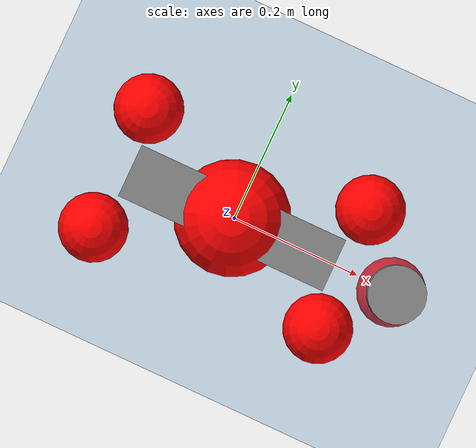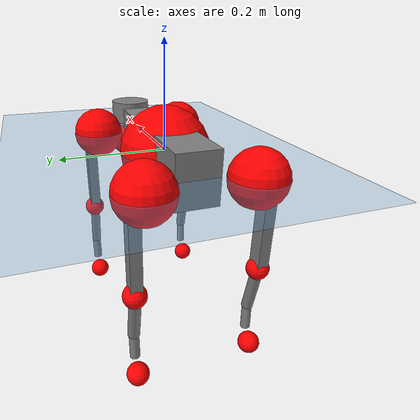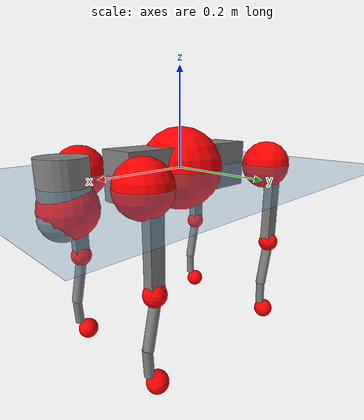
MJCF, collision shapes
<mujoco model="go2">
  <compiler angle="radian" assetdir="assets" balanceinertia="true" inertiafromgeom="false"/>

  <option timestep="0.005" density="1.2" viscosity="2e-05"/>

  <size nkey="1"/>

  <visual>
    <quality shadowsize="8192"/>
    <map shadowclip="0.5"/>
  </visual>

  <default>
    <default class="/">
      <geom contype="0" conaffinity="0" group="1" solref="-1000 -80"/>
      <site size="0.01 0.005 0.005" group="5"/>
      <general forcelimited="true" biastype="affine" gainprm="20" biasprm="0 -20 -0.5"/>
      <default class="go2">
        <joint armature="0.01" damping="0.01" frictionloss="0.2"/>
        <geom condim="1" margin="0.001"/>
        <default class="visual">
          <geom type="mesh" group="2"/>
        </default>
        <default class="collision">
          <geom group="3"/>
          <default class="foot">
            <geom size="0.022 0 0" condim="6" priority="1" friction="0.8 0.02 0.01" solimp="0.015 1 0.022"/>
          </default>
        </default>
        <default class="reward_collision_sphere">
          <geom group="5" rgba="1 0 0 1"/>
        </default>
      </default>
    </default>
  </default>

  <asset>
    <texture type="skybox" colorspace="auto" name="//unnamed_texture_0" builtin="gradient" rgb1="0.95 0.95 0.95" rgb2="0.95 0.95 0.95" width="100" height="600"/>
    <texture type="2d" colorspace="auto" name="texplane" builtin="checker" rgb1="0.345 0.575 0.748" rgb2="0.345 0.575 0.748" markrgb="1 1 1" width="512" height="512"/>
    <material name="MatPlane" class="/" texture="texplane" texuniform="true" texrepeat="2 2" specular="0.9"/>
    <material name="metal" class="/" rgba="0.9 0.95 0.95 1"/>
    <material name="black" class="/" rgba="0 0 0 1"/>
    <material name="white" class="/"/>
    <material name="gray" class="/" rgba="0.671705 0.692426 0.77427 1"/>
    <mesh name="base_0" class="/" file="base_0.obj"/>
    <mesh name="base_1" class="/" file="base_1.obj"/>
    <mesh name="base_2" class="/" file="base_2.obj"/>
    <mesh name="base_3" class="/" file="base_3.obj"/>
    <mesh name="base_4" class="/" file="base_4.obj"/>
    <mesh name="hip_0" class="/" file="hip_0.obj"/>
    <mesh name="hip_1" class="/" file="hip_1.obj"/>
    <mesh name="thigh_0" class="/" file="thigh_0.obj"/>
    <mesh name="thigh_1" class="/" file="thigh_1.obj"/>
    <mesh name="thigh_mirror_0" class="/" file="thigh_mirror_0.obj"/>
    <mesh name="thigh_mirror_1" class="/" file="thigh_mirror_1.obj"/>
    <mesh name="calf_0" class="/" file="calf_0.obj"/>
    <mesh name="calf_1" class="/" file="calf_1.obj"/>
    <mesh name="calf_mirror_0" class="/" file="calf_mirror_0.obj"/>
    <mesh name="calf_mirror_1" class="/" file="calf_mirror_1.obj"/>
    <mesh name="foot" class="/" file="foot.obj"/>
  </asset>

  <worldbody>
    <geom name="floor" class="/" size="100 100 0.125" type="plane" group="0" material="MatPlane"/>
    <light name="toplight_shadow" class="/" pos="0 0 5" dir="0.0990148 0.0990148 -0.990148" type="directional" ambient="0.04 0.04 0.04" diffuse="0.55 0.55 0.55" specular="0.12 0.12 0.12"/>
    <light name="toplight_fill" class="/" pos="0 0 5" dir="0.0990148 0.0990148 -0.990148" type="directional" castshadow="false" ambient="0.04 0.04 0.04" diffuse="0.3 0.3 0.3" specular="0.08 0.08 0.08"/>
    <body name="trunk" childclass="go2" pos="-0.00283265 -0.000869843 -0.00241338" quat="0.999999 -0.000381482 -0.00134408 8.48381e-06">
      <inertial pos="0.017038 0.00210379 -0.00565048" quat="-0.00102564 0.708794 -0.0133048 0.705289" mass="4.6298" diaginertia="0.076688 0.0396036 0.0112774"/>
      <joint name="//unnamed_joint_0" type="free" armature="0" damping="0" frictionloss="0"/>
      <geom name="//unnamed_geom_1" class="visual" material="black" mesh="base_0"/>
      <geom name="//unnamed_geom_2" class="visual" material="black" mesh="base_1"/>
      <geom name="//unnamed_geom_3" class="visual" material="black" mesh="base_2"/>
      <geom name="//unnamed_geom_4" class="visual" material="white" mesh="base_3"/>
      <geom name="//unnamed_geom_5" class="visual" material="gray" mesh="base_4"/>
      <geom name="trunk_1" class="collision" size="0.164346 0.0408461 0.0498017" type="box"/>
      <geom name="trunk_2" class="collision" size="0.0436857 0.0393171" pos="0.265669 0 0.0085444" type="cylinder"/>
      <geom name="trunk_3" class="collision" size="0.0410646" pos="0.273126 0 -0.0512664"/>
      <geom name="//unnamed_geom_9" class="reward_collision_sphere" size="0.0873714"/>
      <geom name="//unnamed_geom_10" class="reward_collision_sphere" size="0.0524228" pos="0.261008 0 -0.0384498"/>
      <site name="imu" pos="-0.0107928 -0.00546076 0.0290026" size="0.00873714"/>
      <camera name="track" pos="0 -1.66906 0" quat="0.707107 0.707107 0 0" mode="trackcom"/>
      <camera name="ego_camera" pos="0.290837 0 0.0384498" quat="-0.5 -0.5 0.5 0.5"/>
      <body name="FL_hip" pos="0.179822 0.0387869 -0.00184149" quat="1 0.00025401 0.000686044 -0.000461996">
        <inertial pos="-0.00748435 0.000825814 -0.000532415" quat="0.486031 0.498108 0.513301 0.50218" mass="0.463462" diaginertia="0.000638874 0.000248369 0.000230837"/>
        <joint name="FL_hip_joint" pos="0 0 0" axis="0.999943 -0.00110609 0.0105953" stiffness="0.0046416" range="-1.00616 1.04342" armature="0.0100299" damping="0.00367473" frictionloss="0.18175"/>
        <geom name="//unnamed_geom_11" class="visual" material="metal" mesh="hip_0"/>
        <geom name="//unnamed_geom_12" class="visual" material="gray" mesh="hip_1"/>
        <geom name="//unnamed_geom_13" class="collision" size="0.0401908 0.0174743" pos="0 0.0667625 0" quat="0.707107 0.707107 0 0" type="cylinder"/>
        <geom name="//unnamed_geom_14" class="reward_collision_sphere" size="0.0524228" pos="0 0.0584172 0"/>
        <body name="FL_thigh" pos="-0.000839843 0.0794485 -0.00112478" quat="1 3.33523e-05 4.06058e-05 -1.21605e-05">
          <inertial pos="-0.0039967 -0.0204469 -0.0290125" quat="0.828532 0.0878897 -0.0190857 0.552671" mass="0.767043" diaginertia="0.00411939 0.00226832 0.000394742"/>
          <joint name="FL_thigh_joint" pos="0 0 0" axis="-0.0120759 0.999926 -0.00158602" stiffness="0.0124881" range="-1.56807 3.51455" armature="0.00771048" damping="0.00468725" frictionloss="0.175781"/>
          <geom name="//unnamed_geom_15" class="visual" material="metal" mesh="thigh_0"/>
          <geom name="//unnamed_geom_16" class="visual" material="gray" mesh="thigh_1"/>
          <geom name="//unnamed_geom_17" class="collision" size="0.0930505 0.010703 0.0148531" pos="0 0 -0.0909978" quat="0.707107 0 0.707107 0" type="box"/>
          <body name="FL_calf" pos="0.00118575 0.0015137 -0.17942" quat="1 5.14676e-05 -1.79719e-05 -6.75567e-05">
            <inertial pos="0.00499577 -0.00296349 -0.117858" quat="0.710741 0.00161572 -0.00466479 0.703436" mass="0.165472" diaginertia="0.00108804 0.000593315 2.4215e-05"/>
            <joint name="FL_calf_joint" pos="0 0 0" axis="0.00549666 0.99987 0.0151697" stiffness="0.00195079" range="-2.66851 -0.884477" armature="0.00873987" damping="0.00492431" frictionloss="0.183539"/>
            <geom name="//unnamed_geom_18" class="visual" material="gray" mesh="calf_0"/>
            <geom name="//unnamed_geom_19" class="visual" material="black" mesh="calf_1"/>
            <geom name="FL_calf0" class="collision" size="0.0104846 0.0524228" pos="0.00745736 0 -0.0512664" quat="0.994493 0 -0.104807 0" type="cylinder"/>
            <geom name="//unnamed_geom_21" class="collision" size="0.00961085 0.0283957" pos="0.0186434 0 -0.126457" quat="0.999688 0 0.0249974 0" type="cylinder"/>
            <geom name="//unnamed_geom_22" class="visual" pos="0 0 -0.181996" quat="1 0 0 0" material="black" mesh="foot"/>
            <geom name="FL_foot" class="foot" size="0.0185757" pos="-0.00186434 0 -0.181996"/>
            <geom name="//unnamed_geom_24" class="reward_collision_sphere" size="0.0218428"/>
            <geom name="//unnamed_geom_25" class="reward_collision_sphere" size="0.0218428" pos="-0.00186434 0 -0.181996"/>
            <site name="FL_foot" class="foot" pos="-0.00186434 0 -0.181996" size="0.00873714"/>
          </body>
        </body>
      </body>
      <body name="FR_hip" pos="0.183124 -0.0359829 0.00197996" quat="1 -3.74083e-05 0.000268818 0.000188749">
        <inertial pos="-0.00530363 -0.00431952 -0.000907209" quat="0.493916 0.501197 0.49974 0.505083" mass="0.461904" diaginertia="0.000616552 0.000252491 0.000222184"/>
        <joint name="FR_hip_joint" pos="0 0 0" axis="0.999999 0.000635508 0.00134529" range="-0.991625 1.03033" armature="0.00885376" damping="0.0179005" frictionloss="0.185369"/>
        <geom name="//unnamed_geom_26" class="visual" pos="0 -1.7343e-10 -7.43878e-09" quat="4.63268e-05 1 0 0" material="metal" mesh="hip_0"/>
        <geom name="//unnamed_geom_27" class="visual" pos="0 -2.81151e-10 1.8399e-08" quat="4.63268e-05 1 0 0" material="gray" mesh="hip_1"/>
        <geom name="//unnamed_geom_28" class="collision" size="0.0401908 0.0174743" pos="0 -0.0667625 0" quat="0.707107 0.707107 0 0" type="cylinder"/>
        <geom name="//unnamed_geom_29" class="reward_collision_sphere" size="0.0524228" pos="0 -0.0584172 0"/>
        <body name="FR_thigh" pos="0.00261859 -0.079346 -0.0019903" quat="1 0.000377846 -0.000337961 4.04726e-05">
          <inertial pos="-0.00367542 0.0189061 -0.0296528" quat="0.555049 -0.0209979 0.0865207 0.827039" mass="0.795568" diaginertia="0.00415182 0.00241884 0.000409575"/>
          <joint name="FR_thigh_joint" pos="0 0 0" axis="-0.00127932 -0.999994 0.00312455" range="-3.52768 1.62457" armature="0.00766753" damping="0.00966001" frictionloss="0.174875"/>
          <geom name="//unnamed_geom_30" class="visual" material="metal" mesh="thigh_mirror_0"/>
          <geom name="//unnamed_geom_31" class="visual" material="gray" mesh="thigh_mirror_1"/>
          <geom name="//unnamed_geom_32" class="collision" size="0.0930505 0.010703 0.0148531" pos="0 0 -0.0909978" quat="0.707107 0 0.707107 0" type="box"/>
          <body name="FR_calf" pos="-0.0011534 -0.00158225 -0.181113" quat="1 6.22395e-06 -1.99168e-06 5.39942e-06">
            <inertial pos="0.00559336 0.000943205 -0.119972" quat="0.706852 -0.0141354 0.00846218 0.707169" mass="0.1537" diaginertia="0.00106115 0.000594587 2.32805e-05"/>
            <joint name="FR_calf_joint" pos="0 0 0" axis="-0.000213901 -0.999971 -0.00765656" range="0.842414 2.67086" armature="0.0100198" damping="0.01605" frictionloss="0.175697"/>
            <geom name="//unnamed_geom_33" class="visual" material="gray" mesh="calf_mirror_0"/>
            <geom name="//unnamed_geom_34" class="visual" material="black" mesh="calf_mirror_1"/>
            <geom name="FR_calf0" class="collision" size="0.0113583 0.0524228" pos="0.0093217 0 -0.0512664" quat="0.995004 0 -0.0998334 0" type="cylinder"/>
            <geom name="//unnamed_geom_36" class="collision" size="0.00961085 0.0283957" pos="0.0186434 0 -0.126457" quat="0.999688 0 0.0249974 0" type="cylinder"/>
            <geom name="//unnamed_geom_37" class="visual" pos="0 0 -0.181996" quat="1 0 0 0" material="black" mesh="foot"/>
            <geom name="FR_foot" class="foot" size="0.0192799" pos="-0.00186434 0 -0.181996"/>
            <geom name="//unnamed_geom_39" class="reward_collision_sphere" size="0.0218428"/>
            <geom name="//unnamed_geom_40" class="reward_collision_sphere" size="0.0218428" pos="-0.00186434 0 -0.181996"/>
            <site name="FR_foot" class="foot" pos="-0.00186434 0 -0.181996" size="0.00873714"/>
          </body>
        </body>
      </body>
      <body name="RL_hip" pos="-0.180017 0.0360653 -0.000692383" quat="1 -0.000145886 -4.55656e-05 -0.000165456">
        <inertial pos="0.00538694 0.00298155 -0.00124582" quat="0.502105 0.498407 0.496949 0.502516" mass="0.470121" diaginertia="0.000649237 0.000235639 0.000218547"/>
        <joint name="RL_hip_joint" pos="0 0 0" axis="-0.99996 -0.00891562 0.000144634" stiffness="0.000986072" range="-1.01997 1.0912" armature="0.00893435" damping="0" frictionloss="0.19394"/>
        <geom name="//unnamed_geom_41" class="visual" pos="-6.77158e-10 0 -1.32738e-07" quat="4.63268e-05 0 1 0" material="metal" mesh="hip_0"/>
        <geom name="//unnamed_geom_42" class="visual" pos="-1.09775e-09 0 -1.1772e-07" quat="4.63268e-05 0 1 0" material="gray" mesh="hip_1"/>
        <geom name="//unnamed_geom_43" class="collision" size="0.0401908 0.0174743" pos="0 0.0667625 0" quat="0.707107 0.707107 0 0" type="cylinder"/>
        <geom name="//unnamed_geom_44" class="reward_collision_sphere" size="0.0524228" pos="0 0.0584172 0"/>
        <body name="RL_thigh" pos="-0.000644998 0.0785496 0.00163712" quat="1 -1.72334e-06 9.61091e-08 -1.56055e-05">
          <inertial pos="-0.00583235 -0.0193484 -0.0291338" quat="0.824975 0.0931602 -0.0226351 0.556979" mass="0.79138" diaginertia="0.00418561 0.00241437 0.000398763"/>
          <joint name="RL_thigh_joint" pos="0 0 0" axis="-0.015853 0.999869 -0.00311072" range="-0.56656 4.54062" armature="0.00935292" damping="0" frictionloss="0.171882"/>
          <geom name="//unnamed_geom_45" class="visual" material="metal" mesh="thigh_0"/>
          <geom name="//unnamed_geom_46" class="visual" material="gray" mesh="thigh_1"/>
          <geom name="//unnamed_geom_47" class="collision" size="0.0930505 0.010703 0.0148531" pos="0 0 -0.0909978" quat="0.707107 0 0.707107 0" type="box"/>
          <body name="RL_calf" pos="-0.00224711 0.00112395 -0.185309" quat="1 -0.000250206 -0.000156545 0.00022345">
            <inertial pos="0.00835496 -0.00328117 -0.118042" quat="0.711637 -0.00915831 0.00347626 0.702479" mass="0.15617" diaginertia="0.00105298 0.000608721 2.39358e-05"/>
            <joint name="RL_calf_joint" pos="0 0 0" axis="-0.000889173 0.999999 0.000599462" range="-2.70353 -0.836592" armature="0.00840128" damping="0.0029208" frictionloss="0.19833"/>
            <geom name="//unnamed_geom_48" class="visual" material="gray" mesh="calf_0"/>
            <geom name="//unnamed_geom_49" class="visual" material="black" mesh="calf_1"/>
            <geom name="RL_calf0" class="collision" size="0.0113583 0.0524228" pos="0.0093217 0 -0.0512664" quat="0.995004 0 -0.0998334 0" type="cylinder"/>
            <geom name="//unnamed_geom_51" class="collision" size="0.00961085 0.0283957" pos="0.0186434 0 -0.126457" quat="0.999688 0 0.0249974 0" type="cylinder"/>
            <geom name="//unnamed_geom_52" class="visual" pos="0 0 -0.181996" quat="1 0 0 0" material="black" mesh="foot"/>
            <geom name="RL_foot" class="foot" size="0.0192608" pos="-0.00186434 0 -0.181996"/>
            <geom name="//unnamed_geom_54" class="reward_collision_sphere" size="0.0218428"/>
            <geom name="//unnamed_geom_55" class="reward_collision_sphere" size="0.0218428" pos="-0.00186434 0 -0.181996"/>
            <site name="RL_foot" class="foot" pos="-0.00186434 0 -0.181996" size="0.00873714"/>
          </body>
        </body>
      </body>
      <body name="RR_hip" pos="-0.180472 -0.0405951 -0.00107626" quat="0.999999 -0.000526278 0.000557168 0.000729368">
        <inertial pos="0.0048609 0.000897479 -0.00309326" quat="0.499054 0.497392 0.498266 0.50525" mass="0.455414" diaginertia="0.000615881 0.000238052 0.000214226"/>
        <joint name="RR_hip_joint" pos="0 0 0" axis="-0.999946 -0.00121844 -0.0103677" stiffness="0.00302715" range="-1.01288 0.994341" armature="0.00767399" damping="0.00149227" frictionloss="0.186895"/>
        <geom name="//unnamed_geom_56" class="visual" pos="6.73777e-10 -1.7343e-10 -1.253e-07" quat="2.14617e-09 4.63268e-05 4.63268e-05 -1" material="metal" mesh="hip_0"/>
        <geom name="//unnamed_geom_57" class="visual" pos="1.10611e-09 -2.81151e-10 -1.36119e-07" quat="2.14617e-09 4.63268e-05 4.63268e-05 -1" material="gray" mesh="hip_1"/>
        <geom name="//unnamed_geom_58" class="collision" size="0.0401908 0.0174743" pos="0 -0.0667625 0" quat="0.707107 0.707107 0 0" type="cylinder"/>
        <geom name="//unnamed_geom_59" class="reward_collision_sphere" size="0.0524228" pos="0 -0.0584172 0"/>
        <body name="RR_thigh" pos="-0.000406511 -0.079595 0.00132496" quat="1 0.000246906 -9.94545e-05 -2.14313e-05">
          <inertial pos="-0.00608085 0.0215978 -0.0278636" quat="0.55059 -0.0206944 0.085442 0.830134" mass="0.718721" diaginertia="0.00415964 0.00231742 0.000399986"/>
          <joint name="RR_thigh_joint" pos="0 0 0" axis="0.000491021 -1 -0.000334969" stiffness="0.0102722" range="-4.57458 0.568041" armature="0.0087677" damping="0.0157919" frictionloss="0.152072"/>
          <geom name="//unnamed_geom_60" class="visual" material="metal" mesh="thigh_mirror_0"/>
          <geom name="//unnamed_geom_61" class="visual" material="gray" mesh="thigh_mirror_1"/>
          <geom name="//unnamed_geom_62" class="collision" size="0.0930505 0.010703 0.0148531" pos="0 0 -0.0909978" quat="0.707107 0 0.707107 0" type="box"/>
          <body name="RR_calf" pos="0.00187823 -4.2814e-05 -0.183168" quat="1 0.000330024 0.000106638 0.000214056">
            <inertial pos="0.00702196 0.000412666 -0.120979" quat="0.701473 -0.00413311 -0.00116359 0.712683" mass="0.149859" diaginertia="0.00101368 0.000578855 2.30882e-05"/>
            <joint name="RR_calf_joint" pos="0 0 0" axis="-0.0032164 -0.999994 0.0014859" range="0.843588 2.77759" armature="0.00788745" damping="0.0110485" frictionloss="0.173209"/>
            <geom name="//unnamed_geom_63" class="visual" material="gray" mesh="calf_mirror_0"/>
            <geom name="//unnamed_geom_64" class="visual" material="black" mesh="calf_mirror_1"/>
            <geom name="RR_calf0" class="collision" size="0.0113583 0.0524228" pos="0.0093217 0 -0.0512664" quat="0.995004 0 -0.0998334 0" type="cylinder"/>
            <geom name="//unnamed_geom_66" class="collision" size="0.00961085 0.0283957" pos="0.0186434 0 -0.126457" quat="0.999688 0 0.0249974 0" type="cylinder"/>
            <geom name="//unnamed_geom_67" class="visual" pos="0 0 -0.181996" quat="1 0 0 0" material="black" mesh="foot"/>
            <geom name="RR_foot" class="foot" size="0.0184335" pos="-0.00186434 0 -0.181996"/>
            <geom name="//unnamed_geom_69" class="reward_collision_sphere" size="0.0218428"/>
            <geom name="//unnamed_geom_70" class="reward_collision_sphere" size="0.0218428" pos="-0.00186434 0 -0.181996"/>
            <site name="RR_foot" class="foot" pos="-0.00186434 0 -0.181996" size="0.00873714"/>
          </body>
        </body>
      </body>
    </body>
  </worldbody>

  <contact>
    <pair class="/" geom1="floor" geom2="FL_foot" name="//unnamed_contact_0"/>
    <pair class="/" geom1="floor" geom2="FR_foot" name="//unnamed_contact_1"/>
    <pair class="/" geom1="floor" geom2="RL_foot" name="//unnamed_contact_2"/>
    <pair class="/" geom1="floor" geom2="RR_foot" name="//unnamed_contact_3"/>
  </contact>

  <actuator>
    <general name="FL_hip" class="/" joint="FL_hip_joint" forcerange="-20.0913 20.0913" gainprm="17.164" biasprm="0 -17.164 -0.466024"/>
    <general name="FL_thigh" class="/" joint="FL_thigh_joint" forcerange="-22.6257 22.6257" gainprm="17.164" biasprm="0 -17.164 -0.466024"/>
    <general name="FL_calf" class="/" joint="FL_calf_joint" forcerange="-36.523 36.523" gainprm="17.164" biasprm="0 -17.164 -0.466024"/>
    <general name="FR_hip" class="/" joint="FR_hip_joint" forcerange="-19.8665 19.8665" gainprm="17.164" biasprm="0 -17.164 -0.466024"/>
    <general name="FR_thigh" class="/" joint="FR_thigh_joint" forcerange="-22.7396 22.7396" gainprm="17.164" biasprm="0 -17.164 -0.466024"/>
    <general name="FR_calf" class="/" joint="FR_calf_joint" forcerange="-40.0156 40.0156" gainprm="17.164" biasprm="0 -17.164 -0.466024"/>
    <general name="RL_hip" class="/" joint="RL_hip_joint" forcerange="-22.1386 22.1386" gainprm="17.164" biasprm="0 -17.164 -0.466024"/>
    <general name="RL_thigh" class="/" joint="RL_thigh_joint" forcerange="-22.5647 22.5647" gainprm="17.164" biasprm="0 -17.164 -0.466024"/>
    <general name="RL_calf" class="/" joint="RL_calf_joint" forcerange="-38.598 38.598" gainprm="17.164" biasprm="0 -17.164 -0.466024"/>
    <general name="RR_hip" class="/" joint="RR_hip_joint" forcerange="-21.1387 21.1387" gainprm="17.164" biasprm="0 -17.164 -0.466024"/>
    <general name="RR_thigh" class="/" joint="RR_thigh_joint" forcerange="-19.761 19.761" gainprm="17.164" biasprm="0 -17.164 -0.466024"/>
    <general name="RR_calf" class="/" joint="RR_calf_joint" forcerange="-35.6268 35.6268" gainprm="17.164" biasprm="0 -17.164 -0.466024"/>
  </actuator>

  <sensor>
    <gyro site="imu" name="imu_angular_velocity"/>
    <velocimeter site="imu" name="imu_linear_velocity"/>
    <framelinvel objtype="site" objname="FL_foot" name="FL_foot_global_linear_velocity"/>
    <framelinvel objtype="site" objname="FR_foot" name="FR_foot_global_linear_velocity"/>
    <framelinvel objtype="site" objname="RL_foot" name="RL_foot_global_linear_velocity"/>
    <framelinvel objtype="site" objname="RR_foot" name="RR_foot_global_linear_velocity"/>
  </sensor>

  <keyframe>
    <key name="home" qpos="0 0 0.325 1 0 0 0 0.1 0.8 -1.5 -0.1 -0.8 1.5 -0.1 0.8 -1.5 0.1 -0.8 1.5"/>
  </keyframe>
</mujoco>
